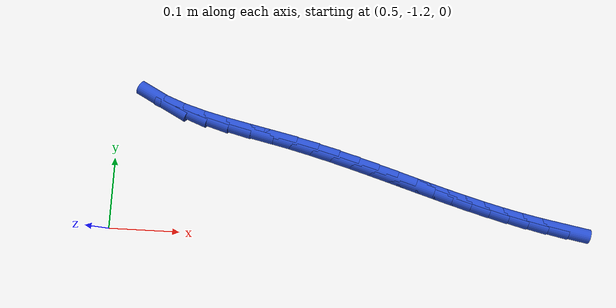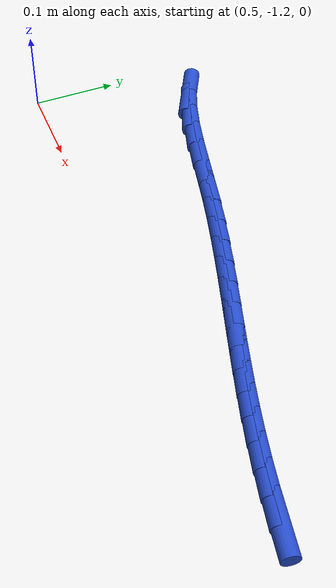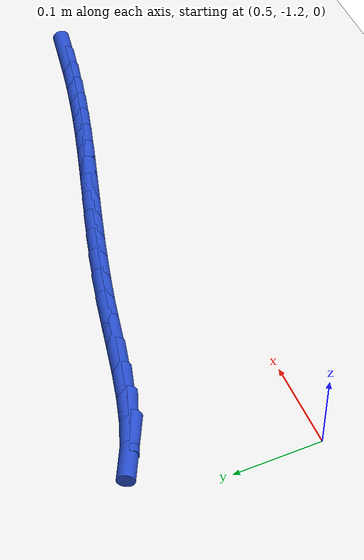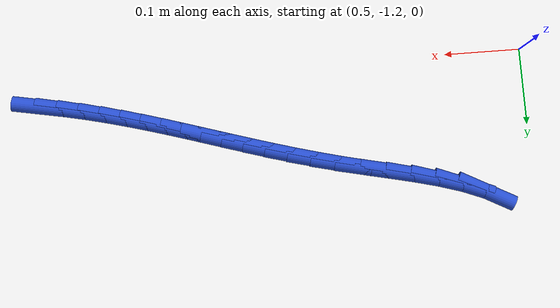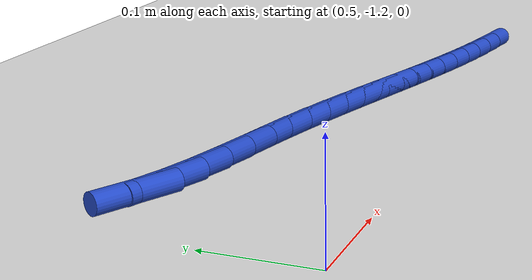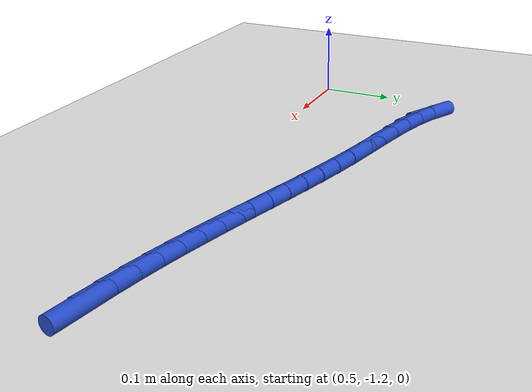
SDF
<sdf version="1.6">
 <world name="default">
  <model name="ground_plane">
   <static>1</static>
   <link name="link">
    <collision name="collision">
     <geometry><plane><normal>0 0 1</normal><size>100 100</size></plane></geometry>
     <surface><friction><ode><mu>100</mu><mu2>50</mu2></ode></friction></surface>
    </collision>
    <visual name="visual">
     <cast_shadows>0</cast_shadows>
     <geometry><plane><normal>0 0 1</normal><size>100 100</size></plane></geometry>
     <material>
      <script><uri>file://media/materials/scripts/gazebo.material</uri><name>Gazebo/WhiteGlow</name></script>
     </material>
    </visual>
   </link>
  </model>
  <model name="line">
   <link name="link_186">
    <pose>1.1333994245525048 -1.1688320804136978 0.01 0 1.57 -0.18316222749459607</pose>
    <collision name="collision">
     <geometry><cylinder><radius>0.01</radius><length>0.08</length></cylinder></geometry>
    </collision>
    <visual name="visual">
     <material>
      <script><name>Gazebo/Blue</name><uri>file://media/materials/scripts/gazebo.material</uri></script>
     </material>
     <geometry><cylinder><radius>0.01</radius><length>0.08</length></cylinder></geometry>
    </visual>
   </link>
   <link name="link_187">
    <pose>1.1041965371031142 -1.1634225854655889 0.01 0 1.57 -0.20886353143769096</pose>
    <collision name="collision">
     <geometry><cylinder><radius>0.01</radius><length>0.08</length></cylinder></geometry>
    </collision>
    <visual name="visual">
     <material>
      <script><name>Gazebo/Blue</name><uri>file://media/materials/scripts/gazebo.material</uri></script>
     </material>
     <geometry><cylinder><radius>0.01</radius><length>0.08</length></cylinder></geometry>
    </visual>
   </link>
   <link name="link_188">
    <pose>1.0759143589069107 -1.15742804674848 0.01 0 1.57 -0.23224584012515598</pose>
    <collision name="collision">
     <geometry><cylinder><radius>0.01</radius><length>0.08</length></cylinder></geometry>
    </collision>
    <visual name="visual">
     <material>
      <script><name>Gazebo/Blue</name><uri>file://media/materials/scripts/gazebo.material</uri></script>
     </material>
     <geometry><cylinder><radius>0.01</radius><length>0.08</length></cylinder></geometry>
    </visual>
   </link>
   <link name="link_189">
    <pose>1.048391659726906 -1.1509185547226415 0.01 0 1.57 -0.2527679408412235</pose>
    <collision name="collision">
     <geometry><cylinder><radius>0.01</radius><length>0.08</length></cylinder></geometry>
    </collision>
    <visual name="visual">
     <material>
      <script><name>Gazebo/Blue</name><uri>file://media/materials/scripts/gazebo.material</uri></script>
     </material>
     <geometry><cylinder><radius>0.01</radius><length>0.08</length></cylinder></geometry>
    </visual>
   </link>
   <link name="link_190">
    <pose>1.0214671057085585 -1.1439641464195778 0.01 0 1.57 -0.2699505281779774</pose>
    <collision name="collision">
     <geometry><cylinder><radius>0.01</radius><length>0.08</length></cylinder></geometry>
    </collision>
    <visual name="visual">
     <material>
      <script><name>Gazebo/Blue</name><uri>file://media/materials/scripts/gazebo.material</uri></script>
     </material>
     <geometry><cylinder><radius>0.01</radius><length>0.08</length></cylinder></geometry>
    </visual>
   </link>
   <link name="link_191">
    <pose>0.9949793629973284 -1.1366348588707953 0.01 0 1.57 -0.2834032967819705</pose>
    <collision name="collision">
     <geometry><cylinder><radius>0.01</radius><length>0.08</length></cylinder></geometry>
    </collision>
    <visual name="visual">
     <material>
      <script><name>Gazebo/Blue</name><uri>file://media/materials/scripts/gazebo.material</uri></script>
     </material>
     <geometry><cylinder><radius>0.01</radius><length>0.08</length></cylinder></geometry>
    </visual>
   </link>
   <link name="link_192">
    <pose>0.9687670977386754 -1.1290007291077997 0.01 0 1.57 -0.2928447103133973</pose>
    <collision name="collision">
     <geometry><cylinder><radius>0.01</radius><length>0.08</length></cylinder></geometry>
    </collision>
    <visual name="visual">
     <material>
      <script><name>Gazebo/Blue</name><uri>file://media/materials/scripts/gazebo.material</uri></script>
     </material>
     <geometry><cylinder><radius>0.01</radius><length>0.08</length></cylinder></geometry>
    </visual>
   </link>
   <link name="link_193">
    <pose>0.9426689760780592 -1.1211317941620964 0.01 0 1.57 -0.2981142589502924</pose>
    <collision name="collision">
     <geometry><cylinder><radius>0.01</radius><length>0.08</length></cylinder></geometry>
    </collision>
    <visual name="visual">
     <material>
      <script><name>Gazebo/Blue</name><uri>file://media/materials/scripts/gazebo.material</uri></script>
     </material>
     <geometry><cylinder><radius>0.01</radius><length>0.08</length></cylinder></geometry>
    </visual>
   </link>
   <link name="link_194">
    <pose>0.9165236641609388 -1.1130980910651909 0.01 0 1.57 -0.29917686131377474</pose>
    <collision name="collision">
     <geometry><cylinder><radius>0.01</radius><length>0.08</length></cylinder></geometry>
    </collision>
    <visual name="visual">
     <material>
      <script><name>Gazebo/Blue</name><uri>file://media/materials/scripts/gazebo.material</uri></script>
     </material>
     <geometry><cylinder><radius>0.01</radius><length>0.08</length></cylinder></geometry>
    </visual>
   </link>
   <link name="link_195">
    <pose>0.8901698281327745 -1.1049696568485887 0.01 0 1.57 -0.2961198330288646</pose>
    <collision name="collision">
     <geometry><cylinder><radius>0.01</radius><length>0.08</length></cylinder></geometry>
    </collision>
    <visual name="visual">
     <material>
      <script><name>Gazebo/Blue</name><uri>file://media/materials/scripts/gazebo.material</uri></script>
     </material>
     <geometry><cylinder><radius>0.01</radius><length>0.08</length></cylinder></geometry>
    </visual>
   </link>
   <link name="link_196">
    <pose>0.8634461341390253 -1.0968165285437952 0.01 0 1.57 -0.2891433324270293</pose>
    <collision name="collision">
     <geometry><cylinder><radius>0.01</radius><length>0.08</length></cylinder></geometry>
    </collision>
    <visual name="visual">
     <material>
      <script><name>Gazebo/Blue</name><uri>file://media/materials/scripts/gazebo.material</uri></script>
     </material>
     <geometry><cylinder><radius>0.01</radius><length>0.08</length></cylinder></geometry>
    </visual>
   </link>
   <link name="link_197">
    <pose>0.8361912483251511 -1.0887087431823166 0.01 0 1.57 -0.2785454559136197</pose>
    <collision name="collision">
     <geometry><cylinder><radius>0.01</radius><length>0.08</length></cylinder></geometry>
    </collision>
    <visual name="visual">
     <material>
      <script><name>Gazebo/Blue</name><uri>file://media/materials/scripts/gazebo.material</uri></script>
     </material>
     <geometry><cylinder><radius>0.01</radius><length>0.08</length></cylinder></geometry>
    </visual>
   </link>
   <link name="link_198">
    <pose>0.8082438368366115 -1.080716337795658 0.01 0 1.57 -0.2647032945214171</pose>
    <collision name="collision">
     <geometry><cylinder><radius>0.01</radius><length>0.08</length></cylinder></geometry>
    </collision>
    <visual name="visual">
     <material>
      <script><name>Gazebo/Blue</name><uri>file://media/materials/scripts/gazebo.material</uri></script>
     </material>
     <geometry><cylinder><radius>0.01</radius><length>0.08</length></cylinder></geometry>
    </visual>
   </link>
   <link name="link_199">
    <pose>0.7794425658188658 -1.0729093494153248 0.01 0 1.57 -0.2480513626688092</pose>
    <collision name="collision">
     <geometry><cylinder><radius>0.01</radius><length>0.08</length></cylinder></geometry>
    </collision>
    <visual name="visual">
     <material>
      <script><name>Gazebo/Blue</name><uri>file://media/materials/scripts/gazebo.material</uri></script>
     </material>
     <geometry><cylinder><radius>0.01</radius><length>0.08</length></cylinder></geometry>
    </visual>
   </link>
   <link name="link_200">
    <pose>0.7496261014173742 -1.0653578150728231 0.01 0 1.57 -0.2291412981669909</pose>
    <collision name="collision">
     <geometry><cylinder><radius>0.01</radius><length>0.08</length></cylinder></geometry>
    </collision>
    <visual name="visual">
     <material>
      <script><name>Gazebo/Blue</name><uri>file://media/materials/scripts/gazebo.material</uri></script>
     </material>
     <geometry><cylinder><radius>0.01</radius><length>0.08</length></cylinder></geometry>
    </visual>
   </link>
   <link name="link_201">
    <pose>0.7186365345360262 -1.0581298777344623 0.01 0 1.57 -0.21603525200630033</pose>
    <collision name="collision">
     <geometry><cylinder><radius>0.01</radius><length>0.08</length></cylinder></geometry>
    </collision>
    <visual name="visual">
     <material>
      <script><name>Gazebo/Blue</name><uri>file://media/materials/scripts/gazebo.material</uri></script>
     </material>
     <geometry><cylinder><radius>0.01</radius><length>0.08</length></cylinder></geometry>
    </visual>
   </link>
   <link name="link_202">
    <pose>0.6866484813266964 -1.0511097770309576 0.01 0 1.57 -0.22180947699744252</pose>
    <collision name="collision">
     <geometry><cylinder><radius>0.01</radius><length>0.08</length></cylinder></geometry>
    </collision>
    <visual name="visual">
     <material>
      <script><name>Gazebo/Blue</name><uri>file://media/materials/scripts/gazebo.material</uri></script>
     </material>
     <geometry><cylinder><radius>0.01</radius><length>0.08</length></cylinder></geometry>
    </visual>
   </link>
   <link name="link_203">
    <pose>0.6544424444067778 -1.0438466666328592 0.01 0 1.57 -0.2478901440350046</pose>
    <collision name="collision">
     <geometry><cylinder><radius>0.01</radius><length>0.08</length></cylinder></geometry>
    </collision>
    <visual name="visual">
     <material>
      <script><name>Gazebo/Blue</name><uri>file://media/materials/scripts/gazebo.material</uri></script>
     </material>
     <geometry><cylinder><radius>0.01</radius><length>0.08</length></cylinder></geometry>
    </visual>
   </link>
   <link name="link_204">
    <pose>0.6228632723341104 -1.0358541136405186 0.01 0 1.57 -0.2968169790559106</pose>
    <collision name="collision">
     <geometry><cylinder><radius>0.01</radius><length>0.08</length></cylinder></geometry>
    </collision>
    <visual name="visual">
     <material>
      <script><name>Gazebo/Blue</name><uri>file://media/materials/scripts/gazebo.material</uri></script>
     </material>
     <geometry><cylinder><radius>0.01</radius><length>0.08</length></cylinder></geometry>
    </visual>
   </link>
   <link name="link_205">
    <pose>0.5927558136665336 -1.0266456851542862 0.01 0 1.57 -0.3741117953949592</pose>
    <collision name="collision">
     <geometry><cylinder><radius>0.01</radius><length>0.08</length></cylinder></geometry>
    </collision>
    <visual name="visual">
     <material>
      <script><name>Gazebo/Blue</name><uri>file://media/materials/scripts/gazebo.material</uri></script>
     </material>
     <geometry><cylinder><radius>0.01</radius><length>0.08</length></cylinder></geometry>
    </visual>
   </link>
   <link name="link_206">
    <pose>0.564964916961888 -1.0157349482745148 0.01 0 1.57 -0.4888108206955174</pose>
    <collision name="collision">
     <geometry><cylinder><radius>0.01</radius><length>0.08</length></cylinder></geometry>
    </collision>
    <visual name="visual">
     <material>
      <script><name>Gazebo/Blue</name><uri>file://media/materials/scripts/gazebo.material</uri></script>
     </material>
     <geometry><cylinder><radius>0.01</radius><length>0.08</length></cylinder></geometry>
    </visual>
   </link>
  </model>
 </world>
</sdf>
